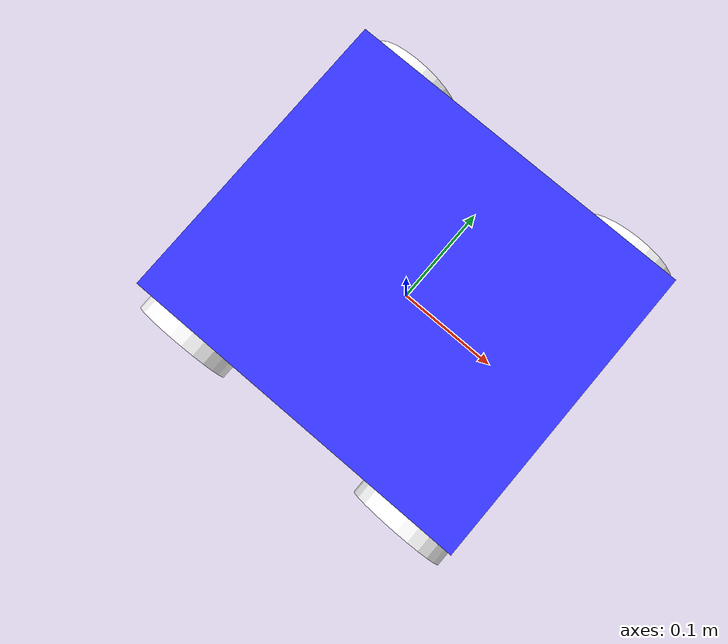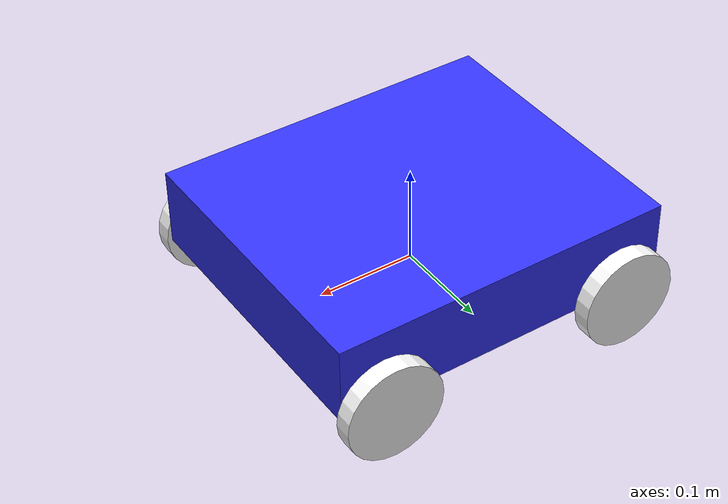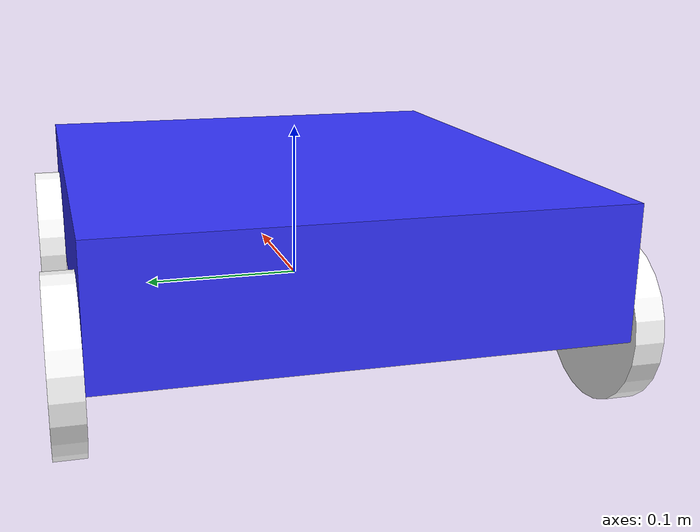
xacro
<?xml version="1.0"?>
<robot xmlns:xacro="http://www.ros.org/wiki/xacro" name="four_wheel_diff_bot">
  <!-- Main URDF file for Four Wheeled Differential Drive Robot -->

  <!-- Include general xacro files -->
  <xacro:include filename="common.xacro" />

  <!-- Include sensors -->

  <!-- Extra sensors -->

  <!-- Robot Variables -->
  <xacro:property name="chassis_length" value="0.35" />
  <xacro:property name="chassis_width" value="0.3" />
  <xacro:property name="chassis_height" value="0.08" />
  <xacro:property name="chassis_mass" value="4.0" />
  <xacro:property name="wheel_radius" value="0.05" />
  <xacro:property name="wheel_thickness" value="0.018" />
  <xacro:property name="wheel_mass" value="0.3" />
  <xacro:property name="wheel_offset_x" value="0.13" />
  <xacro:property name="wheel_offset_y" value="${chassis_width/2 + wheel_thickness/2}" />
  <xacro:property name="wheel_offset_z" value="0.0" />

  <!-- Base Link -->
  <link name="base_link"></link>

  <!-- Base Footprint -->
  <joint name="base_footprint_joint" type="fixed">
    <parent link="base_link" />
    <child link="base_footprint" />
    <origin xyz="0 0 0" rpy="0 0 0" />
  </joint>
  <link name="base_footprint"></link>

  <!-- Chassis -->
  <joint name="chassis_joint" type="fixed">
    <parent link="base_link" />
    <child link="chassis" />
    <origin xyz="0 0 0" />
  </joint>
  <link name="chassis">
    <visual>
      <origin xyz="0 0 ${chassis_height/2}" />
      <geometry>
        <box size="${chassis_length} ${chassis_width} ${chassis_height}" />
      </geometry>
      <material name="blue" />
    </visual>
    <collision>
      <origin xyz="0 0 ${chassis_height/2}" />
      <geometry>
        <box size="${chassis_length} ${chassis_width} ${chassis_height}" />
      </geometry>
    </collision>
    <xacro:inertial_box mass="0.5" x="${chassis_length}" y="${chassis_width}" z="${chassis_height}">
      <origin xyz="0 0 ${chassis_height/2}" rpy="0 0 0" />
    </xacro:inertial_box>
  </link>

  <!-- Front Left Wheel -->
  <joint name="front_left_wheel_joint" type="continuous">
    <parent link="base_link" />
    <child link="front_left_wheel" />
    <origin xyz="${wheel_offset_x} ${wheel_offset_y} 0" rpy="-${pi/2} 0 0" />
    <axis xyz="0 0 1" />
  </joint>
  <link name="front_left_wheel">
    <visual>
      <geometry>
        <cylinder radius="${wheel_radius}" length="${wheel_thickness}" />
      </geometry>
      <material name="white" />
    </visual>
    <collision>
      <geometry>
        <sphere radius="${wheel_radius}" />
      </geometry>
    </collision>
    <xacro:inertial_cylinder mass="${wheel_mass}" length="${wheel_thickness}"
      radius="${wheel_radius}">
      <origin xyz="0 0 0" rpy="0 0 0" />
    </xacro:inertial_cylinder>
  </link>

  <!-- Front Right Wheel -->
  <joint name="front_right_wheel_joint" type="continuous">
    <parent link="base_link" />
    <child link="front_right_wheel" />
    <origin xyz="${wheel_offset_x} ${-wheel_offset_y} 0" rpy="${pi/2} 0 0" />
    <axis xyz="0 0 -1" />
  </joint>
  <link name="front_right_wheel">
    <visual>
      <geometry>
        <cylinder radius="${wheel_radius}" length="${wheel_thickness}" />
      </geometry>
      <material name="white" />
    </visual>
    <collision>
      <geometry>
        <sphere radius="${wheel_radius}" />
      </geometry>
    </collision>
    <xacro:inertial_cylinder mass="${wheel_mass}" length="${wheel_thickness}"
      radius="${wheel_radius}">
      <origin xyz="0 0 0" rpy="0 0 0" />
    </xacro:inertial_cylinder>
  </link>

  <!-- Rear Left Wheel -->
  <joint name="rear_left_wheel_joint" type="continuous">
    <parent link="base_link" />
    <child link="rear_left_wheel" />
    <origin xyz="${-wheel_offset_x} ${wheel_offset_y} 0" rpy="-${pi/2} 0 0" />
    <axis xyz="0 0 1" />
  </joint>
  <link name="rear_left_wheel">
    <visual>
      <geometry>
        <cylinder radius="${wheel_radius}" length="${wheel_thickness}" />
      </geometry>
      <material name="white" />
    </visual>
    <collision>
      <geometry>
        <sphere radius="${wheel_radius}" />
      </geometry>
    </collision>
    <xacro:inertial_cylinder mass="${wheel_mass}" length="${wheel_thickness}"
      radius="${wheel_radius}">
      <origin xyz="0 0 0" rpy="0 0 0" />
    </xacro:inertial_cylinder>
  </link>

  <!-- Rear Right Wheel -->
  <joint name="rear_right_wheel_joint" type="continuous">
    <parent link="base_link" />
    <child link="rear_right_wheel" />
    <origin xyz="${-wheel_offset_x} ${-wheel_offset_y} 0" rpy="${pi/2} 0 0" />
    <axis xyz="0 0 -1" />
  </joint>
  <link name="rear_right_wheel">
    <visual>
      <geometry>
        <cylinder radius="${wheel_radius}" length="${wheel_thickness}" />
      </geometry>
      <material name="white" />
    </visual>
    <collision>
      <geometry>
        <sphere radius="${wheel_radius}" />
      </geometry>
    </collision>
    <xacro:inertial_cylinder mass="${wheel_mass}" length="${wheel_thickness}"
      radius="${wheel_radius}">
      <origin xyz="0 0 0" rpy="0 0 0" />
    </xacro:inertial_cylinder>
  </link>

  <!-- Gazebo -->
  <gazebo reference="chassis">
    <material>Gazebo/Blue</material>
  </gazebo>

  <gazebo reference="front_left_wheel">
    <material>Gazebo/White</material>
  </gazebo>

  <gazebo reference="front_right_wheel">
    <material>Gazebo/White</material>
  </gazebo>

  <gazebo reference="rear_left_wheel">
    <material>Gazebo/White</material>
  </gazebo>

  <gazebo reference="rear_right_wheel">
    <material>Gazebo/White</material>
  </gazebo>

  <gazebo>
    <!-- Four Wheeled Differential Drive Robot -->
    <plugin filename="gz-sim-diff-drive-system" name="gz::sim::systems::DiffDrive">
      <!-- Wheels -->
      <left_joint>rear_left_wheel_joint</left_joint>
      <left_joint>front_left_wheel_joint</left_joint>
      <right_joint>rear_right_wheel_joint</right_joint>
      <right_joint>front_right_wheel_joint</right_joint>
      <!-- Wheel params -->
      <wheel_radius>${wheel_radius}</wheel_radius>
      <wheel_separation>${wheel_offset_y*2}</wheel_separation>
      <wheel_radius>${wheel_radius}</wheel_radius>
      <wheel_separation>${wheel_offset_y*2}</wheel_separation>
      <!-- Limits -->
      <max_linear_acceleration>2.0</max_linear_acceleration>
      <!-- Frames -->
      <frame_id>odom</frame_id>
      <child_frame_id>base_link</child_frame_id>
      <!-- Output -->
      <tf_topic>/tf</tf_topic>
      <topic>cmd_vel</topic>
      <odom_topic>odom</odom_topic>
      <odom_publisher_frequency>30</odom_publisher_frequency>
    </plugin>

    <!-- Joint State Publisher -->
    <plugin filename="gz-sim-joint-state-publisher-system"
      name="gz::sim::systems::JointStatePublisher">
      <topic>joint_states</topic>
      <joint_name>front_left_wheel_joint</joint_name>
      <joint_name>front_right_wheel_joint</joint_name>
      <joint_name>rear_left_wheel_joint</joint_name>
      <joint_name>rear_right_wheel_joint</joint_name>
    </plugin>
  </gazebo>

</robot>

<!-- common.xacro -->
<robot xmlns:xacro="http://www.ros.org/wiki/xacro">
  <!-- This file contains the macros used across the URDF files -->

  <!-- Inertial Macros -->
  <!-- Inertial Sphere Macros -->
  <xacro:macro name="inertial_sphere" params="mass radius *origin">
    <inertial>
      <xacro:insert_block name="origin" />
      <mass value="${mass}" />
      <inertia ixx="${(2/5) * mass * (radius*radius)}" ixy="0.0" ixz="0.0"
        iyy="${(2/5) * mass * (radius*radius)}" iyz="0.0"
        izz="${(2/5) * mass * (radius*radius)}" />
    </inertial>
  </xacro:macro>
  <!-- Inertial Box Macros -->
  <xacro:macro name="inertial_box" params="mass x y z *origin">
    <inertial>
      <xacro:insert_block name="origin" />
      <mass value="${mass}" />
      <inertia ixx="${(1/12) * mass * (y*y+z*z)}" ixy="0.0" ixz="0.0"
        iyy="${(1/12) * mass * (x*x+z*z)}" iyz="0.0"
        izz="${(1/12) * mass * (x*x+y*y)}" />
    </inertial>
  </xacro:macro>
  <!-- Inertial Cylinder Macros -->
  <xacro:macro name="inertial_cylinder" params="mass length radius *origin">
    <inertial>
      <xacro:insert_block name="origin" />
      <mass value="${mass}" />
      <inertia ixx="${(1/12) * mass * (3*radius*radius + length*length)}" ixy="0.0" ixz="0.0"
        iyy="${(1/12) * mass * (3*radius*radius + length*length)}" iyz="0.0"
        izz="${(1/2) * mass * (radius*radius)}" />
    </inertial>
  </xacro:macro>

  <!-- Material Macros -->
  <material name="white">
    <color rgba="1 1 1 1" />
  </material>

  <material name="orange">
    <color rgba="1 0.3 0.1 1" />
  </material>

  <material name="blue">
    <color rgba="0.2 0.2 1 1" />
  </material>

  <material name="black">
    <color rgba="0 0 0 1" />
  </material>

  <material name="red">
    <color rgba="1 0 0 1" />
  </material>

  <material name="grey">
    <color rgba="0.631 0.631 0.631 1" />
  </material>

  <material name="purple">
    <color rgba="0.78 0.153 0.71 1" />
  </material>

  <material name="green">
    <color rgba="0.149 0.612 0.082 1" />
  </material>

</robot>
